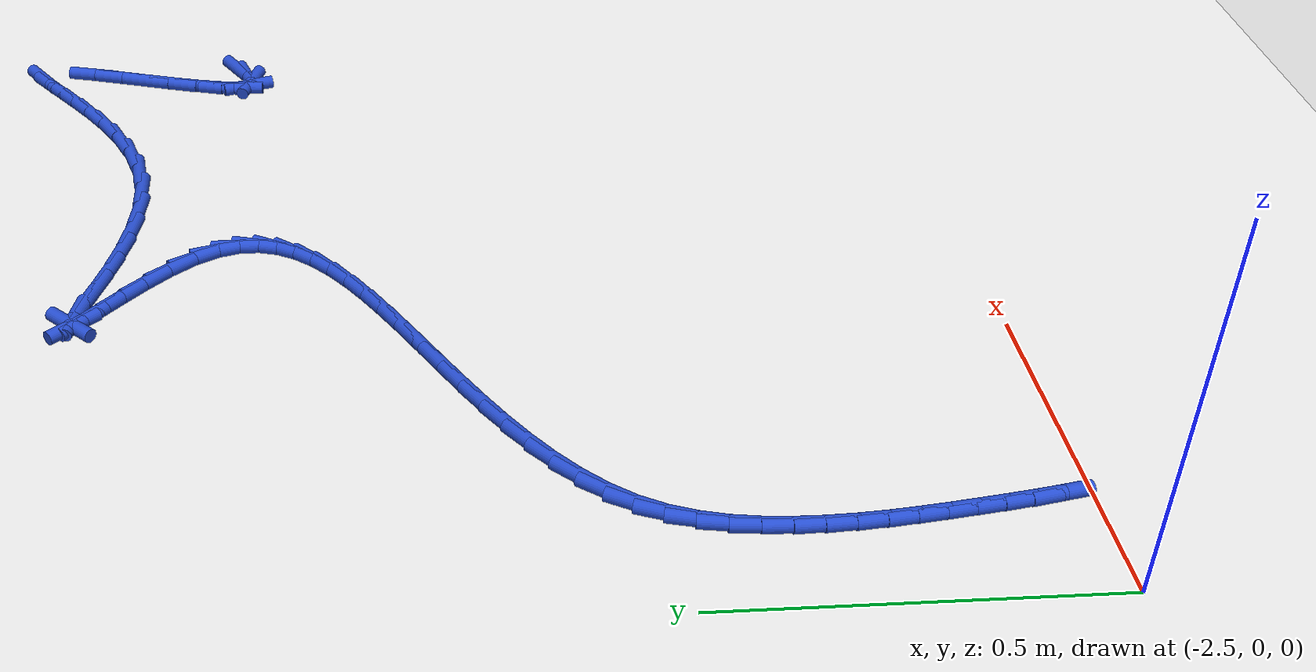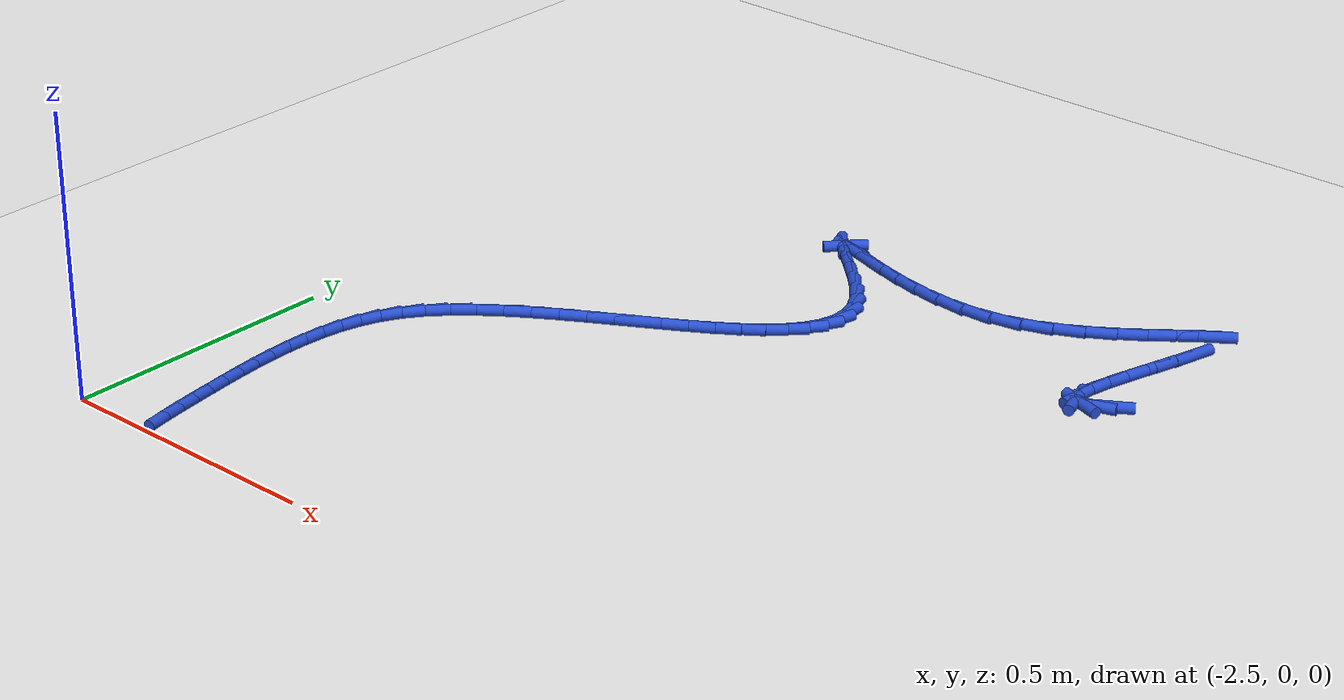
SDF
<sdf version="1.6">
 <world name="default">
  <model name="ground_plane">
   <static>1</static>
   <link name="link">
    <collision name="collision">
     <geometry><plane><normal>0 0 1</normal><size>100 100</size></plane></geometry>
     <surface><friction><ode><mu>100</mu><mu2>50</mu2></ode></friction></surface>
    </collision>
    <visual name="visual">
     <cast_shadows>0</cast_shadows>
     <geometry><plane><normal>0 0 1</normal><size>100 100</size></plane></geometry>
     <material>
      <script><uri>file://media/materials/scripts/gazebo.material</uri><name>Gazebo/WhiteGlow</name></script>
     </material>
    </visual>
   </link>
  </model>
  <model name="line">
   <link name="link_66">
    <pose>-1.2418142024500831 1.0618191078089365 0.01 0 1.57 0.5546795551665067</pose>
    <collision name="collision">
     <geometry><cylinder><radius>0.01</radius><length>0.08</length></cylinder></geometry>
    </collision>
    <visual name="visual">
     <material>
      <script><name>Gazebo/Blue</name><uri>file://media/materials/scripts/gazebo.material</uri></script>
     </material>
     <geometry><cylinder><radius>0.01</radius><length>0.08</length></cylinder></geometry>
    </visual>
   </link>
   <link name="link_67">
    <pose>-1.2657254525845334 1.0470045968382076 0.01 0 1.57 0.32508412154627786</pose>
    <collision name="collision">
     <geometry><cylinder><radius>0.01</radius><length>0.08</length></cylinder></geometry>
    </collision>
    <visual name="visual">
     <material>
      <script><name>Gazebo/Blue</name><uri>file://media/materials/scripts/gazebo.material</uri></script>
     </material>
     <geometry><cylinder><radius>0.01</radius><length>0.08</length></cylinder></geometry>
    </visual>
   </link>
   <link name="link_68">
    <pose>-1.2840455319398194 1.0408299710768905 0.01 0 1.57 -0.3284789446925194</pose>
    <collision name="collision">
     <geometry><cylinder><radius>0.01</radius><length>0.08</length></cylinder></geometry>
    </collision>
    <visual name="visual">
     <material>
      <script><name>Gazebo/Blue</name><uri>file://media/materials/scripts/gazebo.material</uri></script>
     </material>
     <geometry><cylinder><radius>0.01</radius><length>0.08</length></cylinder></geometry>
    </visual>
   </link>
   <link name="link_69">
    <pose>-1.2960241459874324 1.044912597071424 0.01 0 1.57 -1.2717167399099296</pose>
    <collision name="collision">
     <geometry><cylinder><radius>0.01</radius><length>0.08</length></cylinder></geometry>
    </collision>
    <visual name="visual">
     <material>
      <script><name>Gazebo/Blue</name><uri>file://media/materials/scripts/gazebo.material</uri></script>
     </material>
     <geometry><cylinder><radius>0.01</radius><length>0.08</length></cylinder></geometry>
    </visual>
   </link>
   <link name="link_70">
    <pose>-1.3009319587401402 1.0608301003729823 0.01 0 1.57 1.5004034655032692</pose>
    <collision name="collision">
     <geometry><cylinder><radius>0.01</radius><length>0.08</length></cylinder></geometry>
    </collision>
    <visual name="visual">
     <material>
      <script><name>Gazebo/Blue</name><uri>file://media/materials/scripts/gazebo.material</uri></script>
     </material>
     <geometry><cylinder><radius>0.01</radius><length>0.08</length></cylinder></geometry>
    </visual>
   </link>
   <link name="link_71">
    <pose>-1.2989911319518037 1.088355903333171 0.01 0 1.57 1.3743136859850598</pose>
    <collision name="collision">
     <geometry><cylinder><radius>0.01</radius><length>0.08</length></cylinder></geometry>
    </collision>
    <visual name="visual">
     <material>
      <script><name>Gazebo/Blue</name><uri>file://media/materials/scripts/gazebo.material</uri></script>
     </material>
     <geometry><cylinder><radius>0.01</radius><length>0.08</length></cylinder></geometry>
    </visual>
   </link>
   <link name="link_72">
    <pose>-1.2917453476187288 1.1247575988657286 0.01 0 1.57 1.318731673916074</pose>
    <collision name="collision">
     <geometry><cylinder><radius>0.01</radius><length>0.08</length></cylinder></geometry>
    </collision>
    <visual name="visual">
     <material>
      <script><name>Gazebo/Blue</name><uri>file://media/materials/scripts/gazebo.material</uri></script>
     </material>
     <geometry><cylinder><radius>0.01</radius><length>0.08</length></cylinder></geometry>
    </visual>
   </link>
   <link name="link_73">
    <pose>-1.2808357633183758 1.1671179494346662 0.01 0 1.57 1.2933054195667457</pose>
    <collision name="collision">
     <geometry><cylinder><radius>0.01</radius><length>0.08</length></cylinder></geometry>
    </collision>
    <visual name="visual">
     <material>
      <script><name>Gazebo/Blue</name><uri>file://media/materials/scripts/gazebo.material</uri></script>
     </material>
     <geometry><cylinder><radius>0.01</radius><length>0.08</length></cylinder></geometry>
    </visual>
   </link>
   <link name="link_74">
    <pose>-1.2679035366282048 1.212519717503992 0.01 0 1.57 1.2862875723743465</pose>
    <collision name="collision">
     <geometry><cylinder><radius>0.01</radius><length>0.08</length></cylinder></geometry>
    </collision>
    <visual name="visual">
     <material>
      <script><name>Gazebo/Blue</name><uri>file://media/materials/scripts/gazebo.material</uri></script>
     </material>
     <geometry><cylinder><radius>0.01</radius><length>0.08</length></cylinder></geometry>
    </visual>
   </link>
   <link name="link_75">
    <pose>-1.2545898251256764 1.2580456655377172 0.01 0 1.57 1.2958610761009375</pose>
    <collision name="collision">
     <geometry><cylinder><radius>0.01</radius><length>0.08</length></cylinder></geometry>
    </collision>
    <visual name="visual">
     <material>
      <script><name>Gazebo/Blue</name><uri>file://media/materials/scripts/gazebo.material</uri></script>
     </material>
     <geometry><cylinder><radius>0.01</radius><length>0.08</length></cylinder></geometry>
    </visual>
   </link>
   <link name="link_76">
    <pose>-1.242535786388252 1.3007785559998528 0.01 0 1.57 1.3284235622491878</pose>
    <collision name="collision">
     <geometry><cylinder><radius>0.01</radius><length>0.08</length></cylinder></geometry>
    </collision>
    <visual name="visual">
     <material>
      <script><name>Gazebo/Blue</name><uri>file://media/materials/scripts/gazebo.material</uri></script>
     </material>
     <geometry><cylinder><radius>0.01</radius><length>0.08</length></cylinder></geometry>
    </visual>
   </link>
   <link name="link_81">
    <pose>-1.2541265043137193 1.3810305385013537 0.01 0 1.57 0.6107738611112227</pose>
    <collision name="collision">
     <geometry><cylinder><radius>0.01</radius><length>0.08</length></cylinder></geometry>
    </collision>
    <visual name="visual">
     <material>
      <script><name>Gazebo/Blue</name><uri>file://media/materials/scripts/gazebo.material</uri></script>
     </material>
     <geometry><cylinder><radius>0.01</radius><length>0.08</length></cylinder></geometry>
    </visual>
   </link>
   <link name="link_82">
    <pose>-1.275506029403109 1.366063345113959 0.01 0 1.57 0.6704311766181836</pose>
    <collision name="collision">
     <geometry><cylinder><radius>0.01</radius><length>0.08</length></cylinder></geometry>
    </collision>
    <visual name="visual">
     <material>
      <script><name>Gazebo/Blue</name><uri>file://media/materials/scripts/gazebo.material</uri></script>
     </material>
     <geometry><cylinder><radius>0.01</radius><length>0.08</length></cylinder></geometry>
    </visual>
   </link>
   <link name="link_83">
    <pose>-1.302564154413772 1.3446074364118512 0.01 0 1.57 0.6754050998766702</pose>
    <collision name="collision">
     <geometry><cylinder><radius>0.01</radius><length>0.08</length></cylinder></geometry>
    </collision>
    <visual name="visual">
     <material>
      <script><name>Gazebo/Blue</name><uri>file://media/materials/scripts/gazebo.material</uri></script>
     </material>
     <geometry><cylinder><radius>0.01</radius><length>0.08</length></cylinder></geometry>
    </visual>
   </link>
   <link name="link_84">
    <pose>-1.3348190458701321 1.318768371938648 0.01 0 1.57 0.6502063192120724</pose>
    <collision name="collision">
     <geometry><cylinder><radius>0.01</radius><length>0.08</length></cylinder></geometry>
    </collision>
    <visual name="visual">
     <material>
      <script><name>Gazebo/Blue</name><uri>file://media/materials/scripts/gazebo.material</uri></script>
     </material>
     <geometry><cylinder><radius>0.01</radius><length>0.08</length></cylinder></geometry>
    </visual>
   </link>
   <link name="link_85">
    <pose>-1.3717888702966121 1.2906517112379663 0.01 0 1.57 0.6016556574363641</pose>
    <collision name="collision">
     <geometry><cylinder><radius>0.01</radius><length>0.08</length></cylinder></geometry>
    </collision>
    <visual name="visual">
     <material>
      <script><name>Gazebo/Blue</name><uri>file://media/materials/scripts/gazebo.material</uri></script>
     </material>
     <geometry><cylinder><radius>0.01</radius><length>0.08</length></cylinder></geometry>
    </visual>
   </link>
   <link name="link_86">
    <pose>-1.4129917942176358 1.2623630138534234 0.01 0 1.57 0.5302607758093885</pose>
    <collision name="collision">
     <geometry><cylinder><radius>0.01</radius><length>0.08</length></cylinder></geometry>
    </collision>
    <visual name="visual">
     <material>
      <script><name>Gazebo/Blue</name><uri>file://media/materials/scripts/gazebo.material</uri></script>
     </material>
     <geometry><cylinder><radius>0.01</radius><length>0.08</length></cylinder></geometry>
    </visual>
   </link>
   <link name="link_87">
    <pose>-1.4579459841576272 1.2360078393286371 0.01 0 1.57 0.4334165278587312</pose>
    <collision name="collision">
     <geometry><cylinder><radius>0.01</radius><length>0.08</length></cylinder></geometry>
    </collision>
    <visual name="visual">
     <material>
      <script><name>Gazebo/Blue</name><uri>file://media/materials/scripts/gazebo.material</uri></script>
     </material>
     <geometry><cylinder><radius>0.01</radius><length>0.08</length></cylinder></geometry>
    </visual>
   </link>
   <link name="link_88">
    <pose>-1.5061696066410073 1.213691747207224 0.01 0 1.57 0.3069951504600512</pose>
    <collision name="collision">
     <geometry><cylinder><radius>0.01</radius><length>0.08</length></cylinder></geometry>
    </collision>
    <visual name="visual">
     <material>
      <script><name>Gazebo/Blue</name><uri>file://media/materials/scripts/gazebo.material</uri></script>
     </material>
     <geometry><cylinder><radius>0.01</radius><length>0.08</length></cylinder></geometry>
    </visual>
   </link>
   <link name="link_89">
    <pose>-1.5571808281922008 1.1975202970328018 0.01 0 1.57 0.15048652142539107</pose>
    <collision name="collision">
     <geometry><cylinder><radius>0.01</radius><length>0.08</length></cylinder></geometry>
    </collision>
    <visual name="visual">
     <material>
      <script><name>Gazebo/Blue</name><uri>file://media/materials/scripts/gazebo.material</uri></script>
     </material>
     <geometry><cylinder><radius>0.01</radius><length>0.08</length></cylinder></geometry>
    </visual>
   </link>
   <link name="link_90">
    <pose>-1.6104511293889705 1.1894427673554646 0.01 0 1.57 0.00378681578458754</pose>
    <collision name="collision">
     <geometry><cylinder><radius>0.01</radius><length>0.08</length></cylinder></geometry>
    </collision>
    <visual name="visual">
     <material>
      <script><name>Gazebo/Blue</name><uri>file://media/materials/scripts/gazebo.material</uri></script>
     </material>
     <geometry><cylinder><radius>0.01</radius><length>0.08</length></cylinder></geometry>
    </visual>
   </link>
   <link name="link_91">
    <pose>-1.6648032992580972 1.1892369447168463 0.01 0 1.57 -0.10841152885444288</pose>
    <collision name="collision">
     <geometry><cylinder><radius>0.01</radius><length>0.08</length></cylinder></geometry>
    </collision>
    <visual name="visual">
     <material>
      <script><name>Gazebo/Blue</name><uri>file://media/materials/scripts/gazebo.material</uri></script>
     </material>
     <geometry><cylinder><radius>0.01</radius><length>0.08</length></cylinder></geometry>
    </visual>
   </link>
   <link name="link_92">
    <pose>-1.7185850989721085 1.1950904620829277 0.01 0 1.57 -0.1928095669607739</pose>
    <collision name="collision">
     <geometry><cylinder><radius>0.01</radius><length>0.08</length></cylinder></geometry>
    </collision>
    <visual name="visual">
     <material>
      <script><name>Gazebo/Blue</name><uri>file://media/materials/scripts/gazebo.material</uri></script>
     </material>
     <geometry><cylinder><radius>0.01</radius><length>0.08</length></cylinder></geometry>
    </visual>
   </link>
   <link name="link_93">
    <pose>-1.7701333969945219 1.2051544891259474 0.01 0 1.57 -0.25508094898829176</pose>
    <collision name="collision">
     <geometry><cylinder><radius>0.01</radius><length>0.08</length></cylinder></geometry>
    </collision>
    <visual name="visual">
     <material>
      <script><name>Gazebo/Blue</name><uri>file://media/materials/scripts/gazebo.material</uri></script>
     </material>
     <geometry><cylinder><radius>0.01</radius><length>0.08</length></cylinder></geometry>
    </visual>
   </link>
   <link name="link_94">
    <pose>-1.8177850617888562 1.2175801955181453 0.01 0 1.57 -0.2982211453982618</pose>
    <collision name="collision">
     <geometry><cylinder><radius>0.01</radius><length>0.08</length></cylinder></geometry>
    </collision>
    <visual name="visual">
     <material>
      <script><name>Gazebo/Blue</name><uri>file://media/materials/scripts/gazebo.material</uri></script>
     </material>
     <geometry><cylinder><radius>0.01</radius><length>0.08</length></cylinder></geometry>
    </visual>
   </link>
   <link name="link_95">
    <pose>-1.8598769618186284 1.2305187509317606 0.01 0 1.57 -0.32122321922822966</pose>
    <collision name="collision">
     <geometry><cylinder><radius>0.01</radius><length>0.08</length></cylinder></geometry>
    </collision>
    <visual name="visual">
     <material>
      <script><name>Gazebo/Blue</name><uri>file://media/materials/scripts/gazebo.material</uri></script>
     </material>
     <geometry><cylinder><radius>0.01</radius><length>0.08</length></cylinder></geometry>
    </visual>
   </link>
   <link name="link_96">
    <pose>-1.8947459655473555 1.2421213250390322 0.01 0 1.57 -0.3133020297484646</pose>
    <collision name="collision">
     <geometry><cylinder><radius>0.01</radius><length>0.08</length></cylinder></geometry>
    </collision>
    <visual name="visual">
     <material>
      <script><name>Gazebo/Blue</name><uri>file://media/materials/scripts/gazebo.material</uri></script>
     </material>
     <geometry><cylinder><radius>0.01</radius><length>0.08</length></cylinder></geometry>
    </visual>
   </link>
   <link name="link_97">
    <pose>-1.9207289414385544 1.2505390875121989 0.01 0 1.57 -0.21585065763862027</pose>
    <collision name="collision">
     <geometry><cylinder><radius>0.01</radius><length>0.08</length></cylinder></geometry>
    </collision>
    <visual name="visual">
     <material>
      <script><name>Gazebo/Blue</name><uri>file://media/materials/scripts/gazebo.material</uri></script>
     </material>
     <geometry><cylinder><radius>0.01</radius><length>0.08</length></cylinder></geometry>
    </visual>
   </link>
   <link name="link_98">
    <pose>-1.9361627579557439 1.2539232080235012 0.01 0 1.57 0.8265700063009381</pose>
    <collision name="collision">
     <geometry><cylinder><radius>0.01</radius><length>0.08</length></cylinder></geometry>
    </collision>
    <visual name="visual">
     <material>
      <script><name>Gazebo/Blue</name><uri>file://media/materials/scripts/gazebo.material</uri></script>
     </material>
     <geometry><cylinder><radius>0.01</radius><length>0.08</length></cylinder></geometry>
    </visual>
   </link>
   <link name="link_99">
    <pose>-1.9393842835624413 1.2504248562451779 0.01 0 1.57 -0.8616250323767242</pose>
    <collision name="collision">
     <geometry><cylinder><radius>0.01</radius><length>0.08</length></cylinder></geometry>
    </collision>
    <visual name="visual">
     <material>
      <script><name>Gazebo/Blue</name><uri>file://media/materials/scripts/gazebo.material</uri></script>
     </material>
     <geometry><cylinder><radius>0.01</radius><length>0.08</length></cylinder></geometry>
    </visual>
   </link>
   <link name="link_100">
    <pose>-1.9290886864297574 1.2384265668126757 0.01 0 1.57 -0.7427457077946548</pose>
    <collision name="collision">
     <geometry><cylinder><radius>0.01</radius><length>0.08</length></cylinder></geometry>
    </collision>
    <visual name="visual">
     <material>
      <script><name>Gazebo/Blue</name><uri>file://media/materials/scripts/gazebo.material</uri></script>
     </material>
     <geometry><cylinder><radius>0.01</radius><length>0.08</length></cylinder></geometry>
    </visual>
   </link>
   <link name="link_101">
    <pose>-1.9074426463087213 1.2185525344352326 0.01 0 1.57 -0.7304057853976864</pose>
    <collision name="collision">
     <geometry><cylinder><radius>0.01</radius><length>0.08</length></cylinder></geometry>
    </collision>
    <visual name="visual">
     <material>
      <script><name>Gazebo/Blue</name><uri>file://media/materials/scripts/gazebo.material</uri></script>
     </material>
     <geometry><cylinder><radius>0.01</radius><length>0.08</length></cylinder></geometry>
    </visual>
   </link>
   <link name="link_102">
    <pose>-1.8785618338772625 1.1926854762393202 0.01 0 1.57 -0.7528807920092017</pose>
    <collision name="collision">
     <geometry><cylinder><radius>0.01</radius><length>0.08</length></cylinder></geometry>
    </collision>
    <visual name="visual">
     <material>
      <script><name>Gazebo/Blue</name><uri>file://media/materials/scripts/gazebo.material</uri></script>
     </material>
     <geometry><cylinder><radius>0.01</radius><length>0.08</length></cylinder></geometry>
    </visual>
   </link>
   <link name="link_103">
    <pose>-1.8465835277562803 1.162722062254034 0.01 0 1.57 -0.8048021793780373</pose>
    <collision name="collision">
     <geometry><cylinder><radius>0.01</radius><length>0.08</length></cylinder></geometry>
    </collision>
    <visual name="visual">
     <material>
      <script><name>Gazebo/Blue</name><uri>file://media/materials/scripts/gazebo.material</uri></script>
     </material>
     <geometry><cylinder><radius>0.01</radius><length>0.08</length></cylinder></geometry>
    </visual>
   </link>
   <link name="link_104">
    <pose>-1.8156450065666718 1.1305589625084673 0.01 0 1.57 -0.900039039849069</pose>
    <collision name="collision">
     <geometry><cylinder><radius>0.01</radius><length>0.08</length></cylinder></geometry>
    </collision>
    <visual name="visual">
     <material>
      <script><name>Gazebo/Blue</name><uri>file://media/materials/scripts/gazebo.material</uri></script>
     </material>
     <geometry><cylinder><radius>0.01</radius><length>0.08</length></cylinder></geometry>
    </visual>
   </link>
   <link name="link_105">
    <pose>-1.7898835489293359 1.0980928470317153 0.01 0 1.57 -1.0676448148330182</pose>
    <collision name="collision">
     <geometry><cylinder><radius>0.01</radius><length>0.08</length></cylinder></geometry>
    </collision>
    <visual name="visual">
     <material>
      <script><name>Gazebo/Blue</name><uri>file://media/materials/scripts/gazebo.material</uri></script>
     </material>
     <geometry><cylinder><radius>0.01</radius><length>0.08</length></cylinder></geometry>
    </visual>
   </link>
   <link name="link_106">
    <pose>-1.772725096197033 1.066918424954353 0.01 0 1.57 -1.2962013084179862</pose>
    <collision name="collision">
     <geometry><cylinder><radius>0.01</radius><length>0.08</length></cylinder></geometry>
    </collision>
    <visual name="visual">
     <material>
      <script><name>Gazebo/Blue</name><uri>file://media/materials/scripts/gazebo.material</uri></script>
     </material>
     <geometry><cylinder><radius>0.01</radius><length>0.08</length></cylinder></geometry>
    </visual>
   </link>
   <link name="link_107">
    <pose>-1.7643703437181135 1.037261296511554 0.01 0 1.57 -1.5614690011292662</pose>
    <collision name="collision">
     <geometry><cylinder><radius>0.01</radius><length>0.08</length></cylinder></geometry>
    </collision>
    <visual name="visual">
     <material>
      <script><name>Gazebo/Blue</name><uri>file://media/materials/scripts/gazebo.material</uri></script>
     </material>
     <geometry><cylinder><radius>0.01</radius><length>0.08</length></cylinder></geometry>
    </visual>
   </link>
   <link name="link_108">
    <pose>-1.7641063534415649 1.0089592268361476 0.01 0 1.57 1.314171113041474</pose>
    <collision name="collision">
     <geometry><cylinder><radius>0.01</radius><length>0.08</length></cylinder></geometry>
    </collision>
    <visual name="visual">
     <material>
      <script><name>Gazebo/Blue</name><uri>file://media/materials/scripts/gazebo.material</uri></script>
     </material>
     <geometry><cylinder><radius>0.01</radius><length>0.08</length></cylinder></geometry>
    </visual>
   </link>
   <link name="link_109">
    <pose>-1.7712201285626679 0.9818499561201616 0.01 0 1.57 1.084731403133075</pose>
    <collision name="collision">
     <geometry><cylinder><radius>0.01</radius><length>0.08</length></cylinder></geometry>
    </collision>
    <visual name="visual">
     <material>
      <script><name>Gazebo/Blue</name><uri>file://media/materials/scripts/gazebo.material</uri></script>
     </material>
     <geometry><cylinder><radius>0.01</radius><length>0.08</length></cylinder></geometry>
    </visual>
   </link>
   <link name="link_110">
    <pose>-1.7849986722767042 0.9557712245556246 0.01 0 1.57 0.9067404134779983</pose>
    <collision name="collision">
     <geometry><cylinder><radius>0.01</radius><length>0.08</length></cylinder></geometry>
    </collision>
    <visual name="visual">
     <material>
      <script><name>Gazebo/Blue</name><uri>file://media/materials/scripts/gazebo.material</uri></script>
     </material>
     <geometry><cylinder><radius>0.01</radius><length>0.08</length></cylinder></geometry>
    </visual>
   </link>
   <link name="link_111">
    <pose>-1.8047289877789534 0.930560772334563 0.01 0 1.57 0.7760063896052181</pose>
    <collision name="collision">
     <geometry><cylinder><radius>0.01</radius><length>0.08</length></cylinder></geometry>
    </collision>
    <visual name="visual">
     <material>
      <script><name>Gazebo/Blue</name><uri>file://media/materials/scripts/gazebo.material</uri></script>
     </material>
     <geometry><cylinder><radius>0.01</radius><length>0.08</length></cylinder></geometry>
    </visual>
   </link>
   <link name="link_112">
    <pose>-1.8296980782646983 0.906056339649006 0.01 0 1.57 0.6822367427995496</pose>
    <collision name="collision">
     <geometry><cylinder><radius>0.01</radius><length>0.08</length></cylinder></geometry>
    </collision>
    <visual name="visual">
     <material>
      <script><name>Gazebo/Blue</name><uri>file://media/materials/scripts/gazebo.material</uri></script>
     </material>
     <geometry><cylinder><radius>0.01</radius><length>0.08</length></cylinder></geometry>
    </visual>
   </link>
   <link name="link_113">
    <pose>-1.8591929469292194 0.8820956666909802 0.01 0 1.57 0.6160220752029667</pose>
    <collision name="collision">
     <geometry><cylinder><radius>0.01</radius><length>0.08</length></cylinder></geometry>
    </collision>
    <visual name="visual">
     <material>
      <script><name>Gazebo/Blue</name><uri>file://media/materials/scripts/gazebo.material</uri></script>
     </material>
     <geometry><cylinder><radius>0.01</radius><length>0.08</length></cylinder></geometry>
    </visual>
   </link>
   <link name="link_114">
    <pose>-1.8925005969677964 0.8585164936525136 0.01 0 1.57 0.5704653970209254</pose>
    <collision name="collision">
     <geometry><cylinder><radius>0.01</radius><length>0.08</length></cylinder></geometry>
    </collision>
    <visual name="visual">
     <material>
      <script><name>Gazebo/Blue</name><uri>file://media/materials/scripts/gazebo.material</uri></script>
     </material>
     <geometry><cylinder><radius>0.01</radius><length>0.08</length></cylinder></geometry>
    </visual>
   </link>
   <link name="link_115">
    <pose>-1.9289080315757121 0.8351565607256345 0.01 0 1.57 0.5409200914591465</pose>
    <collision name="collision">
     <geometry><cylinder><radius>0.01</radius><length>0.08</length></cylinder></geometry>
    </collision>
    <visual name="visual">
     <material>
      <script><name>Gazebo/Blue</name><uri>file://media/materials/scripts/gazebo.material</uri></script>
     </material>
     <geometry><cylinder><radius>0.01</radius><length>0.08</length></cylinder></geometry>
    </visual>
   </link>
   <link name="link_116">
    <pose>-1.9677022539482463 0.81185360810237 0.01 0 1.57 0.5244141048778426</pose>
    <collision name="collision">
     <geometry><cylinder><radius>0.01</radius><length>0.08</length></cylinder></geometry>
    </collision>
    <visual name="visual">
     <material>
      <script><name>Gazebo/Blue</name><uri>file://media/materials/scripts/gazebo.material</uri></script>
     </material>
     <geometry><cylinder><radius>0.01</radius><length>0.08</length></cylinder></geometry>
    </visual>
   </link>
   <link name="link_117">
    <pose>-2.0081702672806814 0.7884453759747481 0.01 0 1.57 0.5191855474213373</pose>
    <collision name="collision">
     <geometry><cylinder><radius>0.01</radius><length>0.08</length></cylinder></geometry>
    </collision>
    <visual name="visual">
     <material>
      <script><name>Gazebo/Blue</name><uri>file://media/materials/scripts/gazebo.material</uri></script>
     </material>
     <geometry><cylinder><radius>0.01</radius><length>0.08</length></cylinder></geometry>
    </visual>
   </link>
   <link name="link_118">
    <pose>-2.0495990747682966 0.7647696045347965 0.01 0 1.57 0.5243825213002866</pose>
    <collision name="collision">
     <geometry><cylinder><radius>0.01</radius><length>0.08</length></cylinder></geometry>
    </collision>
    <visual name="visual">
     <material>
      <script><name>Gazebo/Blue</name><uri>file://media/materials/scripts/gazebo.material</uri></script>
     </material>
     <geometry><cylinder><radius>0.01</radius><length>0.08</length></cylinder></geometry>
    </visual>
   </link>
   <link name="link_119">
    <pose>-2.0912756796063743 0.7406640339745433 0.01 0 1.57 0.5398981055188183</pose>
    <collision name="collision">
     <geometry><cylinder><radius>0.01</radius><length>0.08</length></cylinder></geometry>
    </collision>
    <visual name="visual">
     <material>
      <script><name>Gazebo/Blue</name><uri>file://media/materials/scripts/gazebo.material</uri></script>
     </material>
     <geometry><cylinder><radius>0.01</radius><length>0.08</length></cylinder></geometry>
    </visual>
   </link>
   <link name="link_120">
    <pose>-2.132487084990195 0.7159664044860159 0.01 0 1.57 0.5663071946076905</pose>
    <collision name="collision">
     <geometry><cylinder><radius>0.01</radius><length>0.08</length></cylinder></geometry>
    </collision>
    <visual name="visual">
     <material>
      <script><name>Gazebo/Blue</name><uri>file://media/materials/scripts/gazebo.material</uri></script>
     </material>
     <geometry><cylinder><radius>0.01</radius><length>0.08</length></cylinder></geometry>
    </visual>
   </link>
   <link name="link_121">
    <pose>-2.1725202941150403 0.6905144562612422 0.01 0 1.57 0.6048800139771109</pose>
    <collision name="collision">
     <geometry><cylinder><radius>0.01</radius><length>0.08</length></cylinder></geometry>
    </collision>
    <visual name="visual">
     <material>
      <script><name>Gazebo/Blue</name><uri>file://media/materials/scripts/gazebo.material</uri></script>
     </material>
     <geometry><cylinder><radius>0.01</radius><length>0.08</length></cylinder></geometry>
    </visual>
   </link>
   <link name="link_122">
    <pose>-2.2106623101761906 0.6641459294922493 0.01 0 1.57 0.657647493686599</pose>
    <collision name="collision">
     <geometry><cylinder><radius>0.01</radius><length>0.08</length></cylinder></geometry>
    </collision>
    <visual name="visual">
     <material>
      <script><name>Gazebo/Blue</name><uri>file://media/materials/scripts/gazebo.material</uri></script>
     </material>
     <geometry><cylinder><radius>0.01</radius><length>0.08</length></cylinder></geometry>
    </visual>
   </link>
   <link name="link_123">
    <pose>-2.2462001363689277 0.636698564371066 0.01 0 1.57 0.7274720975659779</pose>
    <collision name="collision">
     <geometry><cylinder><radius>0.01</radius><length>0.08</length></cylinder></geometry>
    </collision>
    <visual name="visual">
     <material>
      <script><name>Gazebo/Blue</name><uri>file://media/materials/scripts/gazebo.material</uri></script>
     </material>
     <geometry><cylinder><radius>0.01</radius><length>0.08</length></cylinder></geometry>
    </visual>
   </link>
   <link name="link_124">
    <pose>-2.2784207758885318 0.6080101010897196 0.01 0 1.57 0.8180099828870578</pose>
    <collision name="collision">
     <geometry><cylinder><radius>0.01</radius><length>0.08</length></cylinder></geometry>
    </collision>
    <visual name="visual">
     <material>
      <script><name>Gazebo/Blue</name><uri>file://media/materials/scripts/gazebo.material</uri></script>
     </material>
     <geometry><cylinder><radius>0.01</radius><length>0.08</length></cylinder></geometry>
    </visual>
   </link>
   <link name="link_125">
    <pose>-2.3066112319302836 0.577918279840238 0.01 0 1.57 0.9333021748843793</pose>
    <collision name="collision">
     <geometry><cylinder><radius>0.01</radius><length>0.08</length></cylinder></geometry>
    </collision>
    <visual name="visual">
     <material>
      <script><name>Gazebo/Blue</name><uri>file://media/materials/scripts/gazebo.material</uri></script>
     </material>
     <geometry><cylinder><radius>0.01</radius><length>0.08</length></cylinder></geometry>
    </visual>
   </link>
   <link name="link_126">
    <pose>-2.3300585076894658 0.5462608408146481 0.01 0 1.57 1.0732504635884779</pose>
    <collision name="collision">
     <geometry><cylinder><radius>0.01</radius><length>0.08</length></cylinder></geometry>
    </collision>
    <visual name="visual">
     <material>
      <script><name>Gazebo/Blue</name><uri>file://media/materials/scripts/gazebo.material</uri></script>
     </material>
     <geometry><cylinder><radius>0.01</radius><length>0.08</length></cylinder></geometry>
    </visual>
   </link>
   <link name="link_127">
    <pose>-2.348167552320752 0.5129182305859196 0.01 0 1.57 1.2111637634170245</pose>
    <collision name="collision">
     <geometry><cylinder><radius>0.01</radius><length>0.08</length></cylinder></geometry>
    </collision>
    <visual name="visual">
     <material>
      <script><name>Gazebo/Blue</name><uri>file://media/materials/scripts/gazebo.material</uri></script>
     </material>
     <geometry><cylinder><radius>0.01</radius><length>0.08</length></cylinder></geometry>
    </visual>
   </link>
   <link name="link_128">
    <pose>-2.361257862865774 0.4781020391646559 0.01 0 1.57 1.3300795754676038</pose>
    <collision name="collision">
     <geometry><cylinder><radius>0.01</radius><length>0.08</length></cylinder></geometry>
    </collision>
    <visual name="visual">
     <material>
      <script><name>Gazebo/Blue</name><uri>file://media/materials/scripts/gazebo.material</uri></script>
     </material>
     <geometry><cylinder><radius>0.01</radius><length>0.08</length></cylinder></geometry>
    </visual>
   </link>
   <link name="link_129">
    <pose>-2.370076230029658 0.4421785728913848 0.01 0 1.57 1.427349818755959</pose>
    <collision name="collision">
     <geometry><cylinder><radius>0.01</radius><length>0.08</length></cylinder></geometry>
    </collision>
    <visual name="visual">
     <material>
      <script><name>Gazebo/Blue</name><uri>file://media/materials/scripts/gazebo.material</uri></script>
     </material>
     <geometry><cylinder><radius>0.01</radius><length>0.08</length></cylinder></geometry>
    </visual>
   </link>
   <link name="link_130">
    <pose>-2.375371862090531 0.4055150134718774 0.01 0 1.57 1.5028060104111618</pose>
    <collision name="collision">
     <geometry><cylinder><radius>0.01</radius><length>0.08</length></cylinder></geometry>
    </collision>
    <visual name="visual">
     <material>
      <script><name>Gazebo/Blue</name><uri>file://media/materials/scripts/gazebo.material</uri></script>
     </material>
     <geometry><cylinder><radius>0.01</radius><length>0.08</length></cylinder></geometry>
    </visual>
   </link>
   <link name="link_131">
    <pose>-2.37789387507995 0.3684784798952143 0.01 0 1.57 1.5599744657395842</pose>
    <collision name="collision">
     <geometry><cylinder><radius>0.01</radius><length>0.08</length></cylinder></geometry>
    </collision>
    <visual name="visual">
     <material>
      <script><name>Gazebo/Blue</name><uri>file://media/materials/scripts/gazebo.material</uri></script>
     </material>
     <geometry><cylinder><radius>0.01</radius><length>0.08</length></cylinder></geometry>
    </visual>
   </link>
   <link name="link_132">
    <pose>-2.378295464087097 0.33137087632155193 0.01 0 1.57 -1.534579702871635</pose>
    <collision name="collision">
     <geometry><cylinder><radius>0.01</radius><length>0.08</length></cylinder></geometry>
    </collision>
    <visual name="visual">
     <material>
      <script><name>Gazebo/Blue</name><uri>file://media/materials/scripts/gazebo.material</uri></script>
     </material>
     <geometry><cylinder><radius>0.01</radius><length>0.08</length></cylinder></geometry>
    </visual>
   </link>
   <link name="link_133">
    <pose>-2.3769524961335198 0.29430555681929244 0.01 0 1.57 -1.496186317870375</pose>
    <collision name="collision">
     <geometry><cylinder><radius>0.01</radius><length>0.08</length></cylinder></geometry>
    </collision>
    <visual name="visual">
     <material>
      <script><name>Gazebo/Blue</name><uri>file://media/materials/scripts/gazebo.material</uri></script>
     </material>
     <geometry><cylinder><radius>0.01</radius><length>0.08</length></cylinder></geometry>
    </visual>
   </link>
   <link name="link_134">
    <pose>-2.3741910109631155 0.25736199883607547 0.01 0 1.57 -1.4662868340741462</pose>
    <collision name="collision">
     <geometry><cylinder><radius>0.01</radius><length>0.08</length></cylinder></geometry>
    </collision>
    <visual name="visual">
     <material>
      <script><name>Gazebo/Blue</name><uri>file://media/materials/scripts/gazebo.material</uri></script>
     </material>
     <geometry><cylinder><radius>0.01</radius><length>0.08</length></cylinder></geometry>
    </visual>
   </link>
   <link name="link_135">
    <pose>-2.3703370483197745 0.2206196798195396 0.01 0 1.57 -1.4447485292888154</pose>
    <collision name="collision">
     <geometry><cylinder><radius>0.01</radius><length>0.08</length></cylinder></geometry>
    </collision>
    <visual name="visual">
     <material>
      <script><name>Gazebo/Blue</name><uri>file://media/materials/scripts/gazebo.material</uri></script>
     </material>
     <geometry><cylinder><radius>0.01</radius><length>0.08</length></cylinder></geometry>
    </visual>
   </link>
   <link name="link_136">
    <pose>-2.3657166479473926 0.18415807721732563 0.01 0 1.57 -1.431521055019966</pose>
    <collision name="collision">
     <geometry><cylinder><radius>0.01</radius><length>0.08</length></cylinder></geometry>
    </collision>
    <visual name="visual">
     <material>
      <script><name>Gazebo/Blue</name><uri>file://media/materials/scripts/gazebo.material</uri></script>
     </material>
     <geometry><cylinder><radius>0.01</radius><length>0.08</length></cylinder></geometry>
    </visual>
   </link>
   <link name="link_137">
    <pose>-2.360655849589861 0.14805666847707225 0.01 0 1.57 -1.4249722299926517</pose>
    <collision name="collision">
     <geometry><cylinder><radius>0.01</radius><length>0.08</length></cylinder></geometry>
    </collision>
    <visual name="visual">
     <material>
      <script><name>Gazebo/Blue</name><uri>file://media/materials/scripts/gazebo.material</uri></script>
     </material>
     <geometry><cylinder><radius>0.01</radius><length>0.08</length></cylinder></geometry>
    </visual>
   </link>
   <link name="link_138">
    <pose>-2.355415927230235 0.1123785605510156 0.01 0 1.57 -1.4154408918975365</pose>
    <collision name="collision">
     <geometry><cylinder><radius>0.01</radius><length>0.08</length></cylinder></geometry>
    </collision>
    <visual name="visual">
     <material>
      <script><name>Gazebo/Blue</name><uri>file://media/materials/scripts/gazebo.material</uri></script>
     </material>
     <geometry><cylinder><radius>0.01</radius><length>0.08</length></cylinder></geometry>
    </visual>
   </link>
   <link name="link_139">
    <pose>-2.3498897062524238 0.07709372960715467 0.01 0 1.57 -1.3994173138888957</pose>
    <collision name="collision">
     <geometry><cylinder><radius>0.01</radius><length>0.08</length></cylinder></geometry>
    </collision>
    <visual name="visual">
     <material>
      <script><name>Gazebo/Blue</name><uri>file://media/materials/scripts/gazebo.material</uri></script>
     </material>
     <geometry><cylinder><radius>0.01</radius><length>0.08</length></cylinder></geometry>
    </visual>
   </link>
   <link name="link_140">
    <pose>-2.343839898952333 0.04213926382326832 0.01 0 1.57 -1.3769120683279423</pose>
    <collision name="collision">
     <geometry><cylinder><radius>0.01</radius><length>0.08</length></cylinder></geometry>
    </collision>
    <visual name="visual">
     <material>
      <script><name>Gazebo/Blue</name><uri>file://media/materials/scripts/gazebo.material</uri></script>
     </material>
     <geometry><cylinder><radius>0.01</radius><length>0.08</length></cylinder></geometry>
    </visual>
   </link>
  </model>
 </world>
</sdf>
